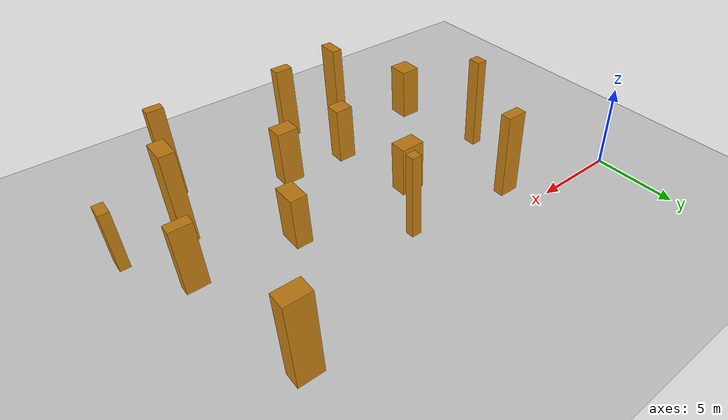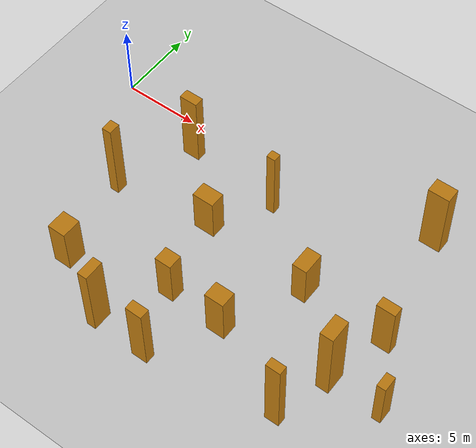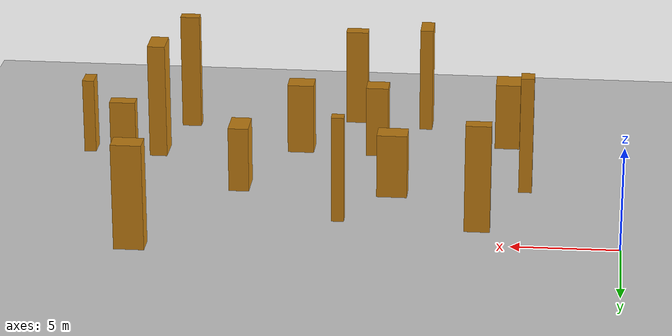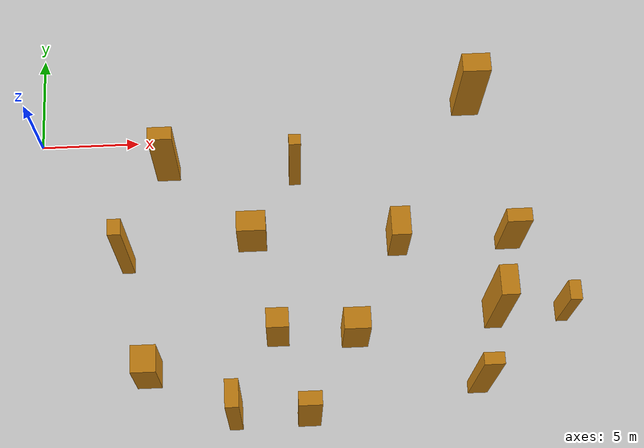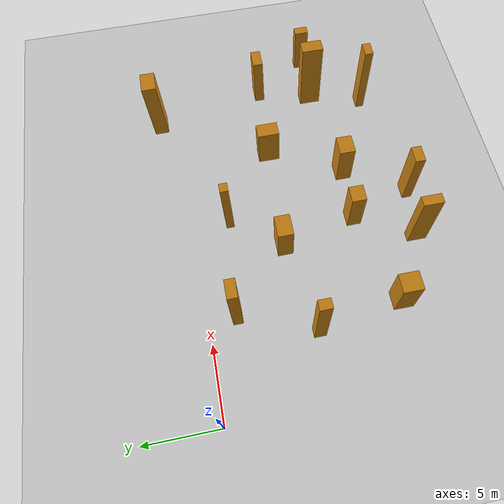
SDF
<sdf version="1.7">
 <world name="default">
  <model name="ground_plane">
   <static>1</static>
   <link name="link">
    <collision name="collision">
     <geometry><plane><normal>0 0 1</normal><size>100 100</size></plane></geometry>
     <surface>
      <contact><collide_bitmask>65535</collide_bitmask></contact>
      <friction><ode><mu>100</mu><mu2>50</mu2></ode></friction>
     </surface>
    </collision>
    <visual name="visual">
     <cast_shadows>0</cast_shadows>
     <geometry><plane><normal>0 0 1</normal><size>100 100</size></plane></geometry>
     <material>
      <script><uri>file://media/materials/scripts/gazebo.material</uri><name>Gazebo/Grey</name></script>
     </material>
    </visual>
   </link>
  </model>
  <model name="model1">
   <link name="link">
    <inertial>
     <mass>1</mass>
     <inertia>
      <ixx>0.166667</ixx>
      <ixy>0</ixy>
      <ixz>0</ixz>
      <iyy>0.166667</iyy>
      <iyz>0</iyz>
      <izz>0.166667</izz>
     </inertia>
    </inertial>
    <visual name="visual">
     <geometry><box><size>0.5839454857871971 0.5363072311326109 5.159209211872117</size></box></geometry>
     <material>
      <script><name>Gazebo/Grey</name><uri>file://media/materials/scripts/gazebo.material</uri></script>
      <shader type="pixel"><normal_map>__default__</normal_map></shader>
      <ambient>0.757 0.49 0.067 1</ambient>
      <diffuse>0.7 0.7 0.7 1</diffuse>
      <specular>0.01 0.01 0.01 1</specular>
      <emissive>0 0 0 1</emissive>
     </material>
    </visual>
    <collision name="collision">
     <geometry><box><size>0.5839454857871971 0.5363072311326109 5.159209211872117</size></box></geometry>
     <surface>
      <friction>
       <ode><mu>1</mu><mu2>1</mu2><fdir1>0 0 0</fdir1><slip1>0</slip1><slip2>0</slip2></ode>
       <torsional>
        <coefficient>1</coefficient>
        <patch_radius>0</patch_radius>
        <surface_radius>0</surface_radius>
        <use_patch_radius>1</use_patch_radius>
        <ode><slip>0</slip></ode>
       </torsional>
      </friction>
      <bounce><restitution_coefficient>0</restitution_coefficient><threshold>1e+06</threshold></bounce>
      <contact>
       <collide_without_contact>0</collide_without_contact>
       <collide_without_contact_bitmask>1</collide_without_contact_bitmask>
       <collide_bitmask>1</collide_bitmask>
       <ode>
        <soft_cfm>0</soft_cfm>
        <soft_erp>0.2</soft_erp>
        <kp>1e+13</kp>
        <kd>1</kd>
        <max_vel>0.01</max_vel>
        <min_depth>0</min_depth>
       </ode>
       <bullet>
        <split_impulse>1</split_impulse>
        <split_impulse_penetration_threshold>-0.01</split_impulse_penetration_threshold>
        <soft_cfm>0</soft_cfm>
        <soft_erp>0.2</soft_erp>
        <kp>1e+13</kp>
        <kd>1</kd>
       </bullet>
      </contact>
     </surface>
    </collision>
   </link>
   <static>0</static>
   <pose>13.085927521723836 -2.365363754695082 2.5796046059360584 0.0 0.0 0.0</pose>
  </model>
  <model name="model2">
   <link name="link">
    <inertial>
     <mass>1</mass>
     <inertia>
      <ixx>0.166667</ixx>
      <ixy>0</ixy>
      <ixz>0</ixz>
      <iyy>0.166667</iyy>
      <iyz>0</iyz>
      <izz>0.166667</izz>
     </inertia>
    </inertial>
    <visual name="visual">
     <geometry><box><size>1.2053655245220571 1.314765779311354 3.340665531903921</size></box></geometry>
     <material>
      <script><name>Gazebo/Grey</name><uri>file://media/materials/scripts/gazebo.material</uri></script>
      <shader type="pixel"><normal_map>__default__</normal_map></shader>
      <ambient>0.757 0.49 0.067 1</ambient>
      <diffuse>0.7 0.7 0.7 1</diffuse>
      <specular>0.01 0.01 0.01 1</specular>
      <emissive>0 0 0 1</emissive>
     </material>
    </visual>
    <collision name="collision">
     <geometry><box><size>1.2053655245220571 1.314765779311354 3.340665531903921</size></box></geometry>
     <surface>
      <friction>
       <ode><mu>1</mu><mu2>1</mu2><fdir1>0 0 0</fdir1><slip1>0</slip1><slip2>0</slip2></ode>
       <torsional>
        <coefficient>1</coefficient>
        <patch_radius>0</patch_radius>
        <surface_radius>0</surface_radius>
        <use_patch_radius>1</use_patch_radius>
        <ode><slip>0</slip></ode>
       </torsional>
      </friction>
      <bounce><restitution_coefficient>0</restitution_coefficient><threshold>1e+06</threshold></bounce>
      <contact>
       <collide_without_contact>0</collide_without_contact>
       <collide_without_contact_bitmask>1</collide_without_contact_bitmask>
       <collide_bitmask>1</collide_bitmask>
       <ode>
        <soft_cfm>0</soft_cfm>
        <soft_erp>0.2</soft_erp>
        <kp>1e+13</kp>
        <kd>1</kd>
        <max_vel>0.01</max_vel>
        <min_depth>0</min_depth>
       </ode>
       <bullet>
        <split_impulse>1</split_impulse>
        <split_impulse_penetration_threshold>-0.01</split_impulse_penetration_threshold>
        <soft_cfm>0</soft_cfm>
        <soft_erp>0.2</soft_erp>
        <kp>1e+13</kp>
        <kd>1</kd>
       </bullet>
      </contact>
     </surface>
    </collision>
   </link>
   <static>0</static>
   <pose>5.5797926981476715 -12.387064183416093 1.6703327659519605 0.0 0.0 0.0</pose>
  </model>
  <model name="model3">
   <link name="link">
    <inertial>
     <mass>1</mass>
     <inertia>
      <ixx>0.166667</ixx>
      <ixy>0</ixy>
      <ixz>0</ixz>
      <iyy>0.166667</iyy>
      <iyz>0</iyz>
      <izz>0.166667</izz>
     </inertia>
    </inertial>
    <visual name="visual">
     <geometry><box><size>1.2248682514001747 0.6664363674741199 4.035094005406677</size></box></geometry>
     <material>
      <script><name>Gazebo/Grey</name><uri>file://media/materials/scripts/gazebo.material</uri></script>
      <shader type="pixel"><normal_map>__default__</normal_map></shader>
      <ambient>0.757 0.49 0.067 1</ambient>
      <diffuse>0.7 0.7 0.7 1</diffuse>
      <specular>0.01 0.01 0.01 1</specular>
      <emissive>0 0 0 1</emissive>
     </material>
    </visual>
    <collision name="collision">
     <geometry><box><size>1.2248682514001747 0.6664363674741199 4.035094005406677</size></box></geometry>
     <surface>
      <friction>
       <ode><mu>1</mu><mu2>1</mu2><fdir1>0 0 0</fdir1><slip1>0</slip1><slip2>0</slip2></ode>
       <torsional>
        <coefficient>1</coefficient>
        <patch_radius>0</patch_radius>
        <surface_radius>0</surface_radius>
        <use_patch_radius>1</use_patch_radius>
        <ode><slip>0</slip></ode>
       </torsional>
      </friction>
      <bounce><restitution_coefficient>0</restitution_coefficient><threshold>1e+06</threshold></bounce>
      <contact>
       <collide_without_contact>0</collide_without_contact>
       <collide_without_contact_bitmask>1</collide_without_contact_bitmask>
       <collide_bitmask>1</collide_bitmask>
       <ode>
        <soft_cfm>0</soft_cfm>
        <soft_erp>0.2</soft_erp>
        <kp>1e+13</kp>
        <kd>1</kd>
        <max_vel>0.01</max_vel>
        <min_depth>0</min_depth>
       </ode>
       <bullet>
        <split_impulse>1</split_impulse>
        <split_impulse_penetration_threshold>-0.01</split_impulse_penetration_threshold>
        <soft_cfm>0</soft_cfm>
        <soft_erp>0.2</soft_erp>
        <kp>1e+13</kp>
        <kd>1</kd>
       </bullet>
      </contact>
     </surface>
    </collision>
   </link>
   <static>0</static>
   <pose>23.726230977202416 -6.264467416354764 2.0175470027033384 0.0 0.0 0.0</pose>
  </model>
  <model name="model6">
   <link name="link">
    <inertial>
     <mass>1</mass>
     <inertia>
      <ixx>0.166667</ixx>
      <ixy>0</ixy>
      <ixz>0</ixz>
      <iyy>0.166667</iyy>
      <iyz>0</iyz>
      <izz>0.166667</izz>
     </inertia>
    </inertial>
    <visual name="visual">
     <geometry><box><size>0.8510653237710026 1.4387723617051402 5.681280423808036</size></box></geometry>
     <material>
      <script><name>Gazebo/Grey</name><uri>file://media/materials/scripts/gazebo.material</uri></script>
      <shader type="pixel"><normal_map>__default__</normal_map></shader>
      <ambient>0.757 0.49 0.067 1</ambient>
      <diffuse>0.7 0.7 0.7 1</diffuse>
      <specular>0.01 0.01 0.01 1</specular>
      <emissive>0 0 0 1</emissive>
     </material>
    </visual>
    <collision name="collision">
     <geometry><box><size>0.8510653237710026 1.4387723617051402 5.681280423808036</size></box></geometry>
     <surface>
      <friction>
       <ode><mu>1</mu><mu2>1</mu2><fdir1>0 0 0</fdir1><slip1>0</slip1><slip2>0</slip2></ode>
       <torsional>
        <coefficient>1</coefficient>
        <patch_radius>0</patch_radius>
        <surface_radius>0</surface_radius>
        <use_patch_radius>1</use_patch_radius>
        <ode><slip>0</slip></ode>
       </torsional>
      </friction>
      <bounce><restitution_coefficient>0</restitution_coefficient><threshold>1e+06</threshold></bounce>
      <contact>
       <collide_without_contact>0</collide_without_contact>
       <collide_without_contact_bitmask>1</collide_without_contact_bitmask>
       <collide_bitmask>1</collide_bitmask>
       <ode>
        <soft_cfm>0</soft_cfm>
        <soft_erp>0.2</soft_erp>
        <kp>1e+13</kp>
        <kd>1</kd>
        <max_vel>0.01</max_vel>
        <min_depth>0</min_depth>
       </ode>
       <bullet>
        <split_impulse>1</split_impulse>
        <split_impulse_penetration_threshold>-0.01</split_impulse_penetration_threshold>
        <soft_cfm>0</soft_cfm>
        <soft_erp>0.2</soft_erp>
        <kp>1e+13</kp>
        <kd>1</kd>
       </bullet>
      </contact>
     </surface>
    </collision>
   </link>
   <static>0</static>
   <pose>22.594056254561426 -9.98770469466633 2.840640211904018 0.0 0.0 0.0</pose>
  </model>
  <model name="model8">
   <link name="link">
    <inertial>
     <mass>1</mass>
     <inertia>
      <ixx>0.166667</ixx>
      <ixy>0</ixy>
      <ixz>0</ixz>
      <iyy>0.166667</iyy>
      <iyz>0</iyz>
      <izz>0.166667</izz>
     </inertia>
    </inertial>
    <visual name="visual">
     <geometry><box><size>1.39973562247595 0.9698481885303738 5.084058155108195</size></box></geometry>
     <material>
      <script><name>Gazebo/Grey</name><uri>file://media/materials/scripts/gazebo.material</uri></script>
      <shader type="pixel"><normal_map>__default__</normal_map></shader>
      <ambient>0.757 0.49 0.067 1</ambient>
      <diffuse>0.7 0.7 0.7 1</diffuse>
      <specular>0.01 0.01 0.01 1</specular>
      <emissive>0 0 0 1</emissive>
     </material>
    </visual>
    <collision name="collision">
     <geometry><box><size>1.39973562247595 0.9698481885303738 5.084058155108195</size></box></geometry>
     <surface>
      <friction>
       <ode><mu>1</mu><mu2>1</mu2><fdir1>0 0 0</fdir1><slip1>0</slip1><slip2>0</slip2></ode>
       <torsional>
        <coefficient>1</coefficient>
        <patch_radius>0</patch_radius>
        <surface_radius>0</surface_radius>
        <use_patch_radius>1</use_patch_radius>
        <ode><slip>0</slip></ode>
       </torsional>
      </friction>
      <bounce><restitution_coefficient>0</restitution_coefficient><threshold>1e+06</threshold></bounce>
      <contact>
       <collide_without_contact>0</collide_without_contact>
       <collide_without_contact_bitmask>1</collide_without_contact_bitmask>
       <collide_bitmask>1</collide_bitmask>
       <ode>
        <soft_cfm>0</soft_cfm>
        <soft_erp>0.2</soft_erp>
        <kp>1e+13</kp>
        <kd>1</kd>
        <max_vel>0.01</max_vel>
        <min_depth>0</min_depth>
       </ode>
       <bullet>
        <split_impulse>1</split_impulse>
        <split_impulse_penetration_threshold>-0.01</split_impulse_penetration_threshold>
        <soft_cfm>0</soft_cfm>
        <soft_erp>0.2</soft_erp>
        <kp>1e+13</kp>
        <kd>1</kd>
       </bullet>
      </contact>
     </surface>
    </collision>
   </link>
   <static>0</static>
   <pose>22.21596540278362 1.4348585282058508 2.5420290775540977 0.0 0.0 0.0</pose>
  </model>
  <model name="model9">
   <link name="link">
    <inertial>
     <mass>1</mass>
     <inertia>
      <ixx>0.166667</ixx>
      <ixy>0</ixy>
      <ixz>0</ixz>
      <iyy>0.166667</iyy>
      <iyz>0</iyz>
      <izz>0.166667</izz>
     </inertia>
    </inertial>
    <visual name="visual">
     <geometry><box><size>0.5692556528215651 0.9577031488105343 3.702021957161678</size></box></geometry>
     <material>
      <script><name>Gazebo/Grey</name><uri>file://media/materials/scripts/gazebo.material</uri></script>
      <shader type="pixel"><normal_map>__default__</normal_map></shader>
      <ambient>0.757 0.49 0.067 1</ambient>
      <diffuse>0.7 0.7 0.7 1</diffuse>
      <specular>0.01 0.01 0.01 1</specular>
      <emissive>0 0 0 1</emissive>
     </material>
    </visual>
    <collision name="collision">
     <geometry><box><size>0.5692556528215651 0.9577031488105343 3.702021957161678</size></box></geometry>
     <surface>
      <friction>
       <ode><mu>1</mu><mu2>1</mu2><fdir1>0 0 0</fdir1><slip1>0</slip1><slip2>0</slip2></ode>
       <torsional>
        <coefficient>1</coefficient>
        <patch_radius>0</patch_radius>
        <surface_radius>0</surface_radius>
        <use_patch_radius>1</use_patch_radius>
        <ode><slip>0</slip></ode>
       </torsional>
      </friction>
      <bounce><restitution_coefficient>0</restitution_coefficient><threshold>1e+06</threshold></bounce>
      <contact>
       <collide_without_contact>0</collide_without_contact>
       <collide_without_contact_bitmask>1</collide_without_contact_bitmask>
       <collide_bitmask>1</collide_bitmask>
       <ode>
        <soft_cfm>0</soft_cfm>
        <soft_erp>0.2</soft_erp>
        <kp>1e+13</kp>
        <kd>1</kd>
        <max_vel>0.01</max_vel>
        <min_depth>0</min_depth>
       </ode>
       <bullet>
        <split_impulse>1</split_impulse>
        <split_impulse_penetration_threshold>-0.01</split_impulse_penetration_threshold>
        <soft_cfm>0</soft_cfm>
        <soft_erp>0.2</soft_erp>
        <kp>1e+13</kp>
        <kd>1</kd>
       </bullet>
      </contact>
     </surface>
    </collision>
   </link>
   <static>0</static>
   <pose>26.026751026869118 -10.01202915709383 1.851010978580839 0.0 0.0 0.0</pose>
  </model>
  <model name="model10">
   <link name="link">
    <inertial>
     <mass>1</mass>
     <inertia>
      <ixx>0.166667</ixx>
      <ixy>0</ixy>
      <ixz>0</ixz>
      <iyy>0.166667</iyy>
      <iyz>0</iyz>
      <izz>0.166667</izz>
     </inertia>
    </inertial>
    <visual name="visual">
     <geometry><box><size>1.440011845833056 1.0309240658905319 3.1242760051178307</size></box></geometry>
     <material>
      <script><name>Gazebo/Grey</name><uri>file://media/materials/scripts/gazebo.material</uri></script>
      <shader type="pixel"><normal_map>__default__</normal_map></shader>
      <ambient>0.757 0.49 0.067 1</ambient>
      <diffuse>0.7 0.7 0.7 1</diffuse>
      <specular>0.01 0.01 0.01 1</specular>
      <emissive>0 0 0 1</emissive>
     </material>
    </visual>
    <collision name="collision">
     <geometry><box><size>1.440011845833056 1.0309240658905319 3.1242760051178307</size></box></geometry>
     <surface>
      <friction>
       <ode><mu>1</mu><mu2>1</mu2><fdir1>0 0 0</fdir1><slip1>0</slip1><slip2>0</slip2></ode>
       <torsional>
        <coefficient>1</coefficient>
        <patch_radius>0</patch_radius>
        <surface_radius>0</surface_radius>
        <use_patch_radius>1</use_patch_radius>
        <ode><slip>0</slip></ode>
       </torsional>
      </friction>
      <bounce><restitution_coefficient>0</restitution_coefficient><threshold>1e+06</threshold></bounce>
      <contact>
       <collide_without_contact>0</collide_without_contact>
       <collide_without_contact_bitmask>1</collide_without_contact_bitmask>
       <collide_bitmask>1</collide_bitmask>
       <ode>
        <soft_cfm>0</soft_cfm>
        <soft_erp>0.2</soft_erp>
        <kp>1e+13</kp>
        <kd>1</kd>
        <max_vel>0.01</max_vel>
        <min_depth>0</min_depth>
       </ode>
       <bullet>
        <split_impulse>1</split_impulse>
        <split_impulse_penetration_threshold>-0.01</split_impulse_penetration_threshold>
        <soft_cfm>0</soft_cfm>
        <soft_erp>0.2</soft_erp>
        <kp>1e+13</kp>
        <kd>1</kd>
       </bullet>
      </contact>
     </surface>
    </collision>
   </link>
   <static>0</static>
   <pose>10.8000576414267 -5.675402770973076 1.5621380025589153 0.0 0.0 0.0</pose>
  </model>
  <model name="model12">
   <link name="link">
    <inertial>
     <mass>1</mass>
     <inertia>
      <ixx>0.166667</ixx>
      <ixy>0</ixy>
      <ixz>0</ixz>
      <iyy>0.166667</iyy>
      <iyz>0</iyz>
      <izz>0.166667</izz>
     </inertia>
    </inertial>
    <visual name="visual">
     <geometry><box><size>0.945465766151815 0.5612854688396307 5.777602081277838</size></box></geometry>
     <material>
      <script><name>Gazebo/Grey</name><uri>file://media/materials/scripts/gazebo.material</uri></script>
      <shader type="pixel"><normal_map>__default__</normal_map></shader>
      <ambient>0.757 0.49 0.067 1</ambient>
      <diffuse>0.7 0.7 0.7 1</diffuse>
      <specular>0.01 0.01 0.01 1</specular>
      <emissive>0 0 0 1</emissive>
     </material>
    </visual>
    <collision name="collision">
     <geometry><box><size>0.945465766151815 0.5612854688396307 5.777602081277838</size></box></geometry>
     <surface>
      <friction>
       <ode><mu>1</mu><mu2>1</mu2><fdir1>0 0 0</fdir1><slip1>0</slip1><slip2>0</slip2></ode>
       <torsional>
        <coefficient>1</coefficient>
        <patch_radius>0</patch_radius>
        <surface_radius>0</surface_radius>
        <use_patch_radius>1</use_patch_radius>
        <ode><slip>0</slip></ode>
       </torsional>
      </friction>
      <bounce><restitution_coefficient>0</restitution_coefficient><threshold>1e+06</threshold></bounce>
      <contact>
       <collide_without_contact>0</collide_without_contact>
       <collide_without_contact_bitmask>1</collide_without_contact_bitmask>
       <collide_bitmask>1</collide_bitmask>
       <ode>
        <soft_cfm>0</soft_cfm>
        <soft_erp>0.2</soft_erp>
        <kp>1e+13</kp>
        <kd>1</kd>
        <max_vel>0.01</max_vel>
        <min_depth>0</min_depth>
       </ode>
       <bullet>
        <split_impulse>1</split_impulse>
        <split_impulse_penetration_threshold>-0.01</split_impulse_penetration_threshold>
        <soft_cfm>0</soft_cfm>
        <soft_erp>0.2</soft_erp>
        <kp>1e+13</kp>
        <kd>1</kd>
       </bullet>
      </contact>
     </surface>
    </collision>
   </link>
   <static>0</static>
   <pose>21.523943800142888 -13.661303301543098 2.888801040638919 0.0 0.0 0.0</pose>
  </model>
  <model name="model15">
   <link name="link">
    <inertial>
     <mass>1</mass>
     <inertia>
      <ixx>0.166667</ixx>
      <ixy>0</ixy>
      <ixz>0</ixz>
      <iyy>0.166667</iyy>
      <iyz>0</iyz>
      <izz>0.166667</izz>
     </inertia>
    </inertial>
    <visual name="visual">
     <geometry><box><size>1.0839174982062698 0.9628404211382068 3.5362903949187983</size></box></geometry>
     <material>
      <script><name>Gazebo/Grey</name><uri>file://media/materials/scripts/gazebo.material</uri></script>
      <shader type="pixel"><normal_map>__default__</normal_map></shader>
      <ambient>0.757 0.49 0.067 1</ambient>
      <diffuse>0.7 0.7 0.7 1</diffuse>
      <specular>0.01 0.01 0.01 1</specular>
      <emissive>0 0 0 1</emissive>
     </material>
    </visual>
    <collision name="collision">
     <geometry><box><size>1.0839174982062698 0.9628404211382068 3.5362903949187983</size></box></geometry>
     <surface>
      <friction>
       <ode><mu>1</mu><mu2>1</mu2><fdir1>0 0 0</fdir1><slip1>0</slip1><slip2>0</slip2></ode>
       <torsional>
        <coefficient>1</coefficient>
        <patch_radius>0</patch_radius>
        <surface_radius>0</surface_radius>
        <use_patch_radius>1</use_patch_radius>
        <ode><slip>0</slip></ode>
       </torsional>
      </friction>
      <bounce><restitution_coefficient>0</restitution_coefficient><threshold>1e+06</threshold></bounce>
      <contact>
       <collide_without_contact>0</collide_without_contact>
       <collide_without_contact_bitmask>1</collide_without_contact_bitmask>
       <collide_bitmask>1</collide_bitmask>
       <ode>
        <soft_cfm>0</soft_cfm>
        <soft_erp>0.2</soft_erp>
        <kp>1e+13</kp>
        <kd>1</kd>
        <max_vel>0.01</max_vel>
        <min_depth>0</min_depth>
       </ode>
       <bullet>
        <split_impulse>1</split_impulse>
        <split_impulse_penetration_threshold>-0.01</split_impulse_penetration_threshold>
        <soft_cfm>0</soft_cfm>
        <soft_erp>0.2</soft_erp>
        <kp>1e+13</kp>
        <kd>1</kd>
       </bullet>
      </contact>
     </surface>
    </collision>
   </link>
   <static>0</static>
   <pose>11.907492524595437 -10.718669321916789 1.7681451974593991 0.0 0.0 0.0</pose>
  </model>
  <model name="model16">
   <link name="link">
    <inertial>
     <mass>1</mass>
     <inertia>
      <ixx>0.166667</ixx>
      <ixy>0</ixy>
      <ixz>0</ixz>
      <iyy>0.166667</iyy>
      <iyz>0</iyz>
      <izz>0.166667</izz>
     </inertia>
    </inertial>
    <visual name="visual">
     <geometry><box><size>0.9630539420621266 1.4653732134798219 3.181129588769163</size></box></geometry>
     <material>
      <script><name>Gazebo/Grey</name><uri>file://media/materials/scripts/gazebo.material</uri></script>
      <shader type="pixel"><normal_map>__default__</normal_map></shader>
      <ambient>0.757 0.49 0.067 1</ambient>
      <diffuse>0.7 0.7 0.7 1</diffuse>
      <specular>0.01 0.01 0.01 1</specular>
      <emissive>0 0 0 1</emissive>
     </material>
    </visual>
    <collision name="collision">
     <geometry><box><size>0.9630539420621266 1.4653732134798219 3.181129588769163</size></box></geometry>
     <surface>
      <friction>
       <ode><mu>1</mu><mu2>1</mu2><fdir1>0 0 0</fdir1><slip1>0</slip1><slip2>0</slip2></ode>
       <torsional>
        <coefficient>1</coefficient>
        <patch_radius>0</patch_radius>
        <surface_radius>0</surface_radius>
        <use_patch_radius>1</use_patch_radius>
        <ode><slip>0</slip></ode>
       </torsional>
      </friction>
      <bounce><restitution_coefficient>0</restitution_coefficient><threshold>1e+06</threshold></bounce>
      <contact>
       <collide_without_contact>0</collide_without_contact>
       <collide_without_contact_bitmask>1</collide_without_contact_bitmask>
       <collide_bitmask>1</collide_bitmask>
       <ode>
        <soft_cfm>0</soft_cfm>
        <soft_erp>0.2</soft_erp>
        <kp>1e+13</kp>
        <kd>1</kd>
        <max_vel>0.01</max_vel>
        <min_depth>0</min_depth>
       </ode>
       <bullet>
        <split_impulse>1</split_impulse>
        <split_impulse_penetration_threshold>-0.01</split_impulse_penetration_threshold>
        <soft_cfm>0</soft_cfm>
        <soft_erp>0.2</soft_erp>
        <kp>1e+13</kp>
        <kd>1</kd>
       </bullet>
      </contact>
     </surface>
    </collision>
   </link>
   <static>0</static>
   <pose>18.105031352682804 -5.983778802928608 1.5905647943845815 0.0 0.0 0.0</pose>
  </model>
  <model name="model20">
   <link name="link">
    <inertial>
     <mass>1</mass>
     <inertia>
      <ixx>0.166667</ixx>
      <ixy>0</ixy>
      <ixz>0</ixz>
      <iyy>0.166667</iyy>
      <iyz>0</iyz>
      <izz>0.166667</izz>
     </inertia>
    </inertial>
    <visual name="visual">
     <geometry><box><size>0.6360329312265391 1.3062462441933602 5.249886255146775</size></box></geometry>
     <material>
      <script><name>Gazebo/Grey</name><uri>file://media/materials/scripts/gazebo.material</uri></script>
      <shader type="pixel"><normal_map>__default__</normal_map></shader>
      <ambient>0.757 0.49 0.067 1</ambient>
      <diffuse>0.7 0.7 0.7 1</diffuse>
      <specular>0.01 0.01 0.01 1</specular>
      <emissive>0 0 0 1</emissive>
     </material>
    </visual>
    <collision name="collision">
     <geometry><box><size>0.6360329312265391 1.3062462441933602 5.249886255146775</size></box></geometry>
     <surface>
      <friction>
       <ode><mu>1</mu><mu2>1</mu2><fdir1>0 0 0</fdir1><slip1>0</slip1><slip2>0</slip2></ode>
       <torsional>
        <coefficient>1</coefficient>
        <patch_radius>0</patch_radius>
        <surface_radius>0</surface_radius>
        <use_patch_radius>1</use_patch_radius>
        <ode><slip>0</slip></ode>
       </torsional>
      </friction>
      <bounce><restitution_coefficient>0</restitution_coefficient><threshold>1e+06</threshold></bounce>
      <contact>
       <collide_without_contact>0</collide_without_contact>
       <collide_without_contact_bitmask>1</collide_without_contact_bitmask>
       <collide_bitmask>1</collide_bitmask>
       <ode>
        <soft_cfm>0</soft_cfm>
        <soft_erp>0.2</soft_erp>
        <kp>1e+13</kp>
        <kd>1</kd>
        <max_vel>0.01</max_vel>
        <min_depth>0</min_depth>
       </ode>
       <bullet>
        <split_impulse>1</split_impulse>
        <split_impulse_penetration_threshold>-0.01</split_impulse_penetration_threshold>
        <soft_cfm>0</soft_cfm>
        <soft_erp>0.2</soft_erp>
        <kp>1e+13</kp>
        <kd>1</kd>
       </bullet>
      </contact>
     </surface>
    </collision>
   </link>
   <static>0</static>
   <pose>9.746887453853674 -14.613602876382378 2.6249431275733874 0.0 0.0 0.0</pose>
  </model>
  <model name="model23">
   <link name="link">
    <inertial>
     <mass>1</mass>
     <inertia>
      <ixx>0.166667</ixx>
      <ixy>0</ixy>
      <ixz>0</ixz>
      <iyy>0.166667</iyy>
      <iyz>0</iyz>
      <izz>0.166667</izz>
     </inertia>
    </inertial>
    <visual name="visual">
     <geometry><box><size>1.2786032821169497 1.0505692266115858 3.499231592068866</size></box></geometry>
     <material>
      <script><name>Gazebo/Grey</name><uri>file://media/materials/scripts/gazebo.material</uri></script>
      <shader type="pixel"><normal_map>__default__</normal_map></shader>
      <ambient>0.757 0.49 0.067 1</ambient>
      <diffuse>0.7 0.7 0.7 1</diffuse>
      <specular>0.01 0.01 0.01 1</specular>
      <emissive>0 0 0 1</emissive>
     </material>
    </visual>
    <collision name="collision">
     <geometry><box><size>1.2786032821169497 1.0505692266115858 3.499231592068866</size></box></geometry>
     <surface>
      <friction>
       <ode><mu>1</mu><mu2>1</mu2><fdir1>0 0 0</fdir1><slip1>0</slip1><slip2>0</slip2></ode>
       <torsional>
        <coefficient>1</coefficient>
        <patch_radius>0</patch_radius>
        <surface_radius>0</surface_radius>
        <use_patch_radius>1</use_patch_radius>
        <ode><slip>0</slip></ode>
       </torsional>
      </friction>
      <bounce><restitution_coefficient>0</restitution_coefficient><threshold>1e+06</threshold></bounce>
      <contact>
       <collide_without_contact>0</collide_without_contact>
       <collide_without_contact_bitmask>1</collide_without_contact_bitmask>
       <collide_bitmask>1</collide_bitmask>
       <ode>
        <soft_cfm>0</soft_cfm>
        <soft_erp>0.2</soft_erp>
        <kp>1e+13</kp>
        <kd>1</kd>
        <max_vel>0.01</max_vel>
        <min_depth>0</min_depth>
       </ode>
       <bullet>
        <split_impulse>1</split_impulse>
        <split_impulse_penetration_threshold>-0.01</split_impulse_penetration_threshold>
        <soft_cfm>0</soft_cfm>
        <soft_erp>0.2</soft_erp>
        <kp>1e+13</kp>
        <kd>1</kd>
       </bullet>
      </contact>
     </surface>
    </collision>
   </link>
   <static>0</static>
   <pose>15.68002282050277 -10.881953822298385 1.749615796034433 0.0 0.0 0.0</pose>
  </model>
  <model name="model24">
   <link name="link">
    <inertial>
     <mass>1</mass>
     <inertia>
      <ixx>0.166667</ixx>
      <ixy>0</ixy>
      <ixz>0</ixz>
      <iyy>0.166667</iyy>
      <iyz>0</iyz>
      <izz>0.166667</izz>
     </inertia>
    </inertial>
    <visual name="visual">
     <geometry><box><size>0.6249370821511501 0.7806474642883059 5.774634345800903</size></box></geometry>
     <material>
      <script><name>Gazebo/Grey</name><uri>file://media/materials/scripts/gazebo.material</uri></script>
      <shader type="pixel"><normal_map>__default__</normal_map></shader>
      <ambient>0.757 0.49 0.067 1</ambient>
      <diffuse>0.7 0.7 0.7 1</diffuse>
      <specular>0.01 0.01 0.01 1</specular>
      <emissive>0 0 0 1</emissive>
     </material>
    </visual>
    <collision name="collision">
     <geometry><box><size>0.6249370821511501 0.7806474642883059 5.774634345800903</size></box></geometry>
     <surface>
      <friction>
       <ode><mu>1</mu><mu2>1</mu2><fdir1>0 0 0</fdir1><slip1>0</slip1><slip2>0</slip2></ode>
       <torsional>
        <coefficient>1</coefficient>
        <patch_radius>0</patch_radius>
        <surface_radius>0</surface_radius>
        <use_patch_radius>1</use_patch_radius>
        <ode><slip>0</slip></ode>
       </torsional>
      </friction>
      <bounce><restitution_coefficient>0</restitution_coefficient><threshold>1e+06</threshold></bounce>
      <contact>
       <collide_without_contact>0</collide_without_contact>
       <collide_without_contact_bitmask>1</collide_without_contact_bitmask>
       <collide_bitmask>1</collide_bitmask>
       <ode>
        <soft_cfm>0</soft_cfm>
        <soft_erp>0.2</soft_erp>
        <kp>1e+13</kp>
        <kd>1</kd>
        <max_vel>0.01</max_vel>
        <min_depth>0</min_depth>
       </ode>
       <bullet>
        <split_impulse>1</split_impulse>
        <split_impulse_penetration_threshold>-0.01</split_impulse_penetration_threshold>
        <soft_cfm>0</soft_cfm>
        <soft_erp>0.2</soft_erp>
        <kp>1e+13</kp>
        <kd>1</kd>
       </bullet>
      </contact>
     </surface>
    </collision>
   </link>
   <static>0</static>
   <pose>4.526429863834602 -6.707399826743487 2.8873171729004516 0.0 0.0 0.0</pose>
  </model>
  <model name="model26">
   <link name="link">
    <inertial>
     <mass>1</mass>
     <inertia>
      <ixx>0.166667</ixx>
      <ixy>0</ixy>
      <ixz>0</ixz>
      <iyy>0.166667</iyy>
      <iyz>0</iyz>
      <izz>0.166667</izz>
     </inertia>
    </inertial>
    <visual name="visual">
     <geometry><box><size>1.0926117525915044 0.6568311117725589 4.825699961497543</size></box></geometry>
     <material>
      <script><name>Gazebo/Grey</name><uri>file://media/materials/scripts/gazebo.material</uri></script>
      <shader type="pixel"><normal_map>__default__</normal_map></shader>
      <ambient>0.757 0.49 0.067 1</ambient>
      <diffuse>0.7 0.7 0.7 1</diffuse>
      <specular>0.01 0.01 0.01 1</specular>
      <emissive>0 0 0 1</emissive>
     </material>
    </visual>
    <collision name="collision">
     <geometry><box><size>1.0926117525915044 0.6568311117725589 4.825699961497543</size></box></geometry>
     <surface>
      <friction>
       <ode><mu>1</mu><mu2>1</mu2><fdir1>0 0 0</fdir1><slip1>0</slip1><slip2>0</slip2></ode>
       <torsional>
        <coefficient>1</coefficient>
        <patch_radius>0</patch_radius>
        <surface_radius>0</surface_radius>
        <use_patch_radius>1</use_patch_radius>
        <ode><slip>0</slip></ode>
       </torsional>
      </friction>
      <bounce><restitution_coefficient>0</restitution_coefficient><threshold>1e+06</threshold></bounce>
      <contact>
       <collide_without_contact>0</collide_without_contact>
       <collide_without_contact_bitmask>1</collide_without_contact_bitmask>
       <collide_bitmask>1</collide_bitmask>
       <ode>
        <soft_cfm>0</soft_cfm>
        <soft_erp>0.2</soft_erp>
        <kp>1e+13</kp>
        <kd>1</kd>
        <max_vel>0.01</max_vel>
        <min_depth>0</min_depth>
       </ode>
       <bullet>
        <split_impulse>1</split_impulse>
        <split_impulse_penetration_threshold>-0.01</split_impulse_penetration_threshold>
        <soft_cfm>0</soft_cfm>
        <soft_erp>0.2</soft_erp>
        <kp>1e+13</kp>
        <kd>1</kd>
       </bullet>
      </contact>
     </surface>
    </collision>
   </link>
   <static>0</static>
   <pose>13.267500765092489 -14.902978127241322 2.4128499807487716 0.0 0.0 0.0</pose>
  </model>
  <model name="model28">
   <link name="link">
    <inertial>
     <mass>1</mass>
     <inertia>
      <ixx>0.166667</ixx>
      <ixy>0</ixy>
      <ixz>0</ixz>
      <iyy>0.166667</iyy>
      <iyz>0</iyz>
      <izz>0.166667</izz>
     </inertia>
    </inertial>
    <visual name="visual">
     <geometry><box><size>1.185454899962394 0.6471922910178924 5.233618747862831</size></box></geometry>
     <material>
      <script><name>Gazebo/Grey</name><uri>file://media/materials/scripts/gazebo.material</uri></script>
      <shader type="pixel"><normal_map>__default__</normal_map></shader>
      <ambient>0.757 0.49 0.067 1</ambient>
      <diffuse>0.7 0.7 0.7 1</diffuse>
      <specular>0.01 0.01 0.01 1</specular>
      <emissive>0 0 0 1</emissive>
     </material>
    </visual>
    <collision name="collision">
     <geometry><box><size>1.185454899962394 0.6471922910178924 5.233618747862831</size></box></geometry>
     <surface>
      <friction>
       <ode><mu>1</mu><mu2>1</mu2><fdir1>0 0 0</fdir1><slip1>0</slip1><slip2>0</slip2></ode>
       <torsional>
        <coefficient>1</coefficient>
        <patch_radius>0</patch_radius>
        <surface_radius>0</surface_radius>
        <use_patch_radius>1</use_patch_radius>
        <ode><slip>0</slip></ode>
       </torsional>
      </friction>
      <bounce><restitution_coefficient>0</restitution_coefficient><threshold>1e+06</threshold></bounce>
      <contact>
       <collide_without_contact>0</collide_without_contact>
       <collide_without_contact_bitmask>1</collide_without_contact_bitmask>
       <collide_bitmask>1</collide_bitmask>
       <ode>
        <soft_cfm>0</soft_cfm>
        <soft_erp>0.2</soft_erp>
        <kp>1e+13</kp>
        <kd>1</kd>
        <max_vel>0.01</max_vel>
        <min_depth>0</min_depth>
       </ode>
       <bullet>
        <split_impulse>1</split_impulse>
        <split_impulse_penetration_threshold>-0.01</split_impulse_penetration_threshold>
        <soft_cfm>0</soft_cfm>
        <soft_erp>0.2</soft_erp>
        <kp>1e+13</kp>
        <kd>1</kd>
       </bullet>
      </contact>
     </surface>
    </collision>
   </link>
   <static>0</static>
   <pose>6.594815792588875 -1.8049747752719352 2.6168093739314155 0.0 0.0 0.0</pose>
  </model>
 </world>
</sdf>
